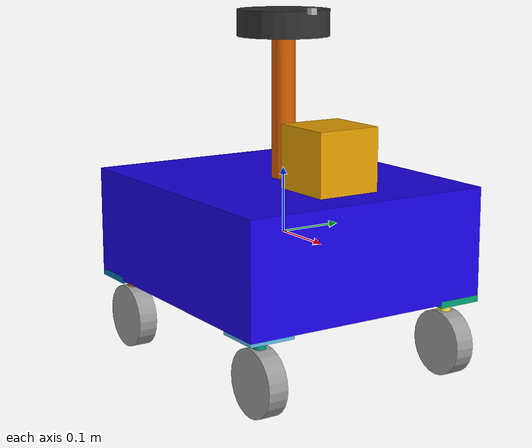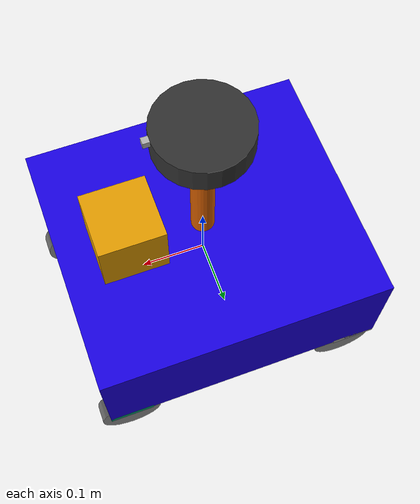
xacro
<?xml version="1.0"?>
<robot name="macroed" xmlns:xacro="http://ros.org/wiki/xacro">

<xacro:property name="length" value='0.45' />
<xacro:property name="width"  value='0.4' />
<xacro:property name='height' value='0.17' />
<xacro:property name="wheel_radius" value='0.05' />
<xacro:property name="wheel_width" value='0.03' />
<xacro:property name="sheet_length" value='0.07' />
<xacro:property name="sheet_width" value='0.07' />
<xacro:property name="sheet_height" value='0.01' />
<xacro:property name="c_radius" value='0.01'/>
<xacro:property name="c_height" value='0.05'/>
<xacro:property name="cylin_radius" value='0.07' />
<xacro:property name="cylin_height" value='0.04' />
<xacro:property name="rod_radius" value='0.018' />
<xacro:property name="rod_length" value='0.3'/>
<xacro:property name="camera_dim" value="0.01"/>
<xacro:property name="pi" value="3.1428"/>
<xacro:property name="laz_radius" value="0.04"/>
<xacro:property name="laz_height" value="0.1"/>

<material name="blue">
    <color rgba="0.1 0.0 0.9 1"/>
</material>
<material name="grey">
    <color rgba="0.191 0.191 0.191 1"/>
</material>

<xacro:macro name="default_inertial" params="mass">
    <inertial>
      <mass value="${mass}" />
      <inertia ixx="1.0" ixy="0.0" ixz="0.0" iyy="1.0" iyz="0.0" izz="1.0" />
    </inertial>
  </xacro:macro>

<link name="base_link">
    <visual>
        <geometry>
           <box size="${length} ${width} ${height}"/>
        </geometry>
        <material name='blue'/>
    </visual>
    <collision>
        <geometry>
            <box size= "${length} ${width} ${height}"/>
        </geometry>
    </collision>
    <inertial>
        <mass value="5"/>
       <inertia ixx="0.07871" ixy="0" ixz="0" iyy="0.09642" iyz="0.0" izz="0.1510"/>
    </inertial>
</link>

<xacro:macro name="sheets" params="prefix suffix reflectx reflecty">
    <link name="${prefix}_${suffix}_sheet">
        <visual>
            <geometry>
                <box size="${sheet_length} ${sheet_width} ${sheet_height}"/>
            </geometry>
        </visual>
        <collision>
            <geometry>
                <box size="${sheet_length} ${sheet_width} ${sheet_height}"/>
            </geometry>
        </collision>
        <inertial>
            <mass value="0.01"/>
            <inertia ixx="0.000004167" ixy="0.0" ixz="0.0" iyy="0.000004167" iyz="0.0" izz="0.000008167"/>
        </inertial>

    </link>
    <joint name="${prefix}_${suffix}_sheet_joint" type="fixed">
        <parent link="base_link"/>
        <child link="${prefix}_${suffix}_sheet"/>
        <origin xyz="${(length-sheet_length)*0.5*reflectx} ${(width-sheet_width)*0.5*reflecty} -0.085" rpy="0.0 0.0 0.0"/>
    </joint>

    <link name="${prefix}_${suffix}_scylinder">
        <visual>
            <geometry>
                <cylinder radius="${c_radius}" length="${c_height}"/>
            </geometry>
        </visual>
        <collision>
                <geometry>
                    <cylinder radius="${c_radius}" length="${c_height}"/>
                </geometry>
        </collision>
        <inertial>
            <mass value="0.01"/>
           <inertia ixx="0.0000023333" ixy="0.0" ixz="0.0" iyy="0.0000023333" iyz="0.0" izz="0.0000005"/>
        </inertial>
    </link>
    <joint name="${prefix}_${suffix}_sheet_cylinder" type="fixed">
        <parent link="${prefix}_${suffix}_sheet"/>
        <child link="${prefix}_${suffix}_scylinder"/>
    </joint>

    <link name="${prefix}_${suffix}_wheel">
        <visual>
            <geometry>
                <cylinder radius="${wheel_radius}" length="${wheel_width}"/>
            </geometry>
        </visual>
        <collision>
                <geometry>
                    <cylinder radius="${wheel_radius}" length="${wheel_width}"/>
                </geometry>
        </collision>
        <inertial>
            <mass value="1"/>
           <inertia ixx="0.0007" ixy="0.0" ixz="0.0" iyy="0.0007" iyz="0.0" izz="0.00125"/>
        </inertial>
    </link>
    <joint name="${prefix}_${suffix}_scylinder_wheel" type="continuous">
        <axis xyz="0 0.0 1.0"/>
        <parent link="${prefix}_${suffix}_scylinder"/>
        <child link="${prefix}_${suffix}_wheel"/>
        <origin xyz="0.0 0.0 -0.07" rpy="-1.57 0.0 0.0"/>
    </joint>
    <gazebo reference="${prefix}_${suffix}_wheel">
      <mu1 value="200.0"/>
      <mu2 value="100.0"/>
      <kp value="10000000.0" />
      <kd value="1.0" />
      <material>Gazebo/Grey</material>
    </gazebo>
    <transmission name="${prefix}_${suffix}_wheel_trans">
      <type>transmission_interface/SimpleTransmission</type>
      <actuator name="${prefix}_${suffix}_wheel_motor">
        <mechanicalReduction>1</mechanicalReduction>
      </actuator>
      <joint name="${prefix}_${suffix}_scylinder_wheel">
        <hardwareInterface>hardware_interface/VelocityJointInterface</hardwareInterface>
      </joint>
    </transmission>
</xacro:macro>
<xacro:sheets prefix="left" suffix="front" reflectx="1" reflecty="-1" />
<xacro:sheets prefix="left" suffix="back" reflectx="-1" reflecty="-1"/>
 <xacro:sheets prefix="right" suffix="back" reflectx="-1" reflecty="1" />
<xacro:sheets prefix="right" suffix="front" reflectx="1" reflecty="1" />

<link name="rod">
<visual>
<geometry>
    <cylinder radius="${rod_radius}" length="${rod_length}"/>
</geometry>
<origin xyz="0.0 0.0 0.17"/>
</visual>
<collision>
    <geometry>
    <cylinder radius="${rod_radius}" length="${rod_length}"/>
    </geometry>
</collision>
<inertial>
    <mass value="1.75"/>
   <inertia ixx="0.007581" ixy="0.0" ixz="0.0" iyy="0.007581" iyz="0.0" izz="0.000162"/>
</inertial>
</link>

<joint name="base_to_rod" type="fixed">
    <parent link="base_link"/>
    <child link="rod"/>
</joint>

<link name="cylin">
    <visual>
        <geometry>
            <cylinder radius="${cylin_radius}" length="${cylin_height}"/>
        </geometry>
        <material name='grey'/>
    </visual>
    <collision>
        <geometry>
            <cylinder radius="${cylin_radius}" length="${cylin_height}"/>
        </geometry>
    </collision>
  <inertial>
      <mass value="0.65"/>
     <inertia ixx="0.000883" ixy="0.0" ixz="0.0" iyy="0.000883" iyz="0.0" izz="0.0015925"/>
  </inertial>
</link>
<joint name="rod_cylin" type="continuous">
    <axis xyz="0.0 0.0 1"/>
    <parent link="rod"/>
    <child link="cylin"/>
    <origin xyz="0.0 0.0 0.32"/>
</joint>

<transmission name="cylin_trans">
    <type>transmission_interface/SimpleTransmission</type>
    <actuator name="motor1">
      <mechanicalReduction>1</mechanicalReduction>
    </actuator>
    <joint name="rod_cylin">
      <hardwareInterface>hardware_interface/PositionJointInterface</hardwareInterface>
    </joint>
</transmission>

<link name="camera_link">
    <visual>
        <geometry>
            <box size="${camera_dim} ${camera_dim} ${camera_dim}"/>
        </geometry>
    </visual>
    <collision>
        <geometry>
            <box size="${camera_dim} ${camera_dim} ${camera_dim}"/>
        </geometry>
    </collision>
    <inertial>
        <mass value="0.2"/>
       <inertia ixx="0.0000033333" ixy="0.0" ixz="0.0" iyy="0.0000033333" iyz="0.0" izz="0.0000033333"/>
    </inertial>
</link>
<joint name="camera_joint" type="fixed">
    <axis xyz="1.0 0.0 0.0"/>
    <parent link="cylin"/>
    <child link="camera_link"/>
    <origin xyz="0.075 0.0 0.02"/>
</joint>
<gazebo>
    <plugin name="gazebo_ros_control" filename="libgazebo_ros_control.so">
      <robotNamespace>/</robotNamespace>
    </plugin>
</gazebo>
<gazebo reference="camera_link">
    <sensor type="camera" name="camera1">
      <update_rate>30.0</update_rate>
      <camera name="head">
        <horizontal_fov>1.3962634</horizontal_fov>
        <image>
          <width>800</width>
          <height>800</height>
          <format>R8G8B8</format>
        </image>
        <clip>
          <near>0.02</near>
          <far>300</far>
        </clip>
        <noise>
          <type>gaussian</type>
          <mean>0.0</mean>
          <stddev>0.007</stddev>
        </noise>
      </camera>
      <plugin name="camera_controller" filename="libgazebo_ros_camera.so">
        <alwaysOn>true</alwaysOn>
        <updateRate>0.0</updateRate>
        <cameraName>macroed/camera1</cameraName>
        <imageTopicName>image_raw</imageTopicName>
        <cameraInfoTopicName>camera_info</cameraInfoTopicName>
        <frameName>camera_link</frameName>
        <hackBaseline>0.07</hackBaseline>
        <distortionK1>0.0</distortionK1>
        <distortionK2>0.0</distortionK2>
        <distortionK3>0.0</distortionK3>
        <distortionT1>0.0</distortionT1>
        <distortionT2>0.0</distortionT2>
      </plugin>
    </sensor>
  </gazebo>

  <joint name="hokuyo_joint" type="fixed">
    <axis xyz="0 0 1" />
    <origin xyz="0.12 0 0.13" rpy="0 0 0"/>
    <parent link="base_link"/>
    <child link="hokuyo_link"/>
  </joint>

  <!-- Hokuyo Laser -->
  <link name="hokuyo_link">
    <collision>
      <origin xyz="0 0 0" rpy="0 0 0"/>
      <geometry>
    <box size="0.1 0.1 0.1"/>
      </geometry>
    </collision>

    <visual>
      <origin xyz="0 0 0" rpy="0 0 0"/>
      <geometry>
        <box size="0.1 0.1 0.1"/>
      </geometry>
    </visual>

    <inertial>
      <mass value="1e-5" />
      <origin xyz="0 0 0" rpy="0 0 0"/>
      <inertia ixx="1e-6" ixy="0" ixz="0" iyy="1e-6" iyz="0" izz="1e-6" />
    </inertial>
  </link>
  <gazebo reference="hokuyo_link">
    <sensor type="gpu_ray" name="head_hokuyo_sensor">
      <pose>0 0 0 0 0 0</pose>
      <visualize>true</visualize>
      <update_rate>40</update_rate>
      <ray>
        <scan>
          <horizontal>
            <samples>720</samples>
            <resolution>1</resolution>
            <min_angle>-1.570796</min_angle>
            <max_angle>1.570796</max_angle>
          </horizontal>
        </scan>
        <range>
          <min>0.10</min>
          <max>10.0</max>
          <resolution>0.01</resolution>
        </range>
      </ray>
      <plugin name="gazebo_ros_head_hokuyo_controller" filename="libgazebo_ros_gpu_laser.so">
        <topicName>/macroed/laser/scan</topicName>
        <frameName>hokuyo_link</frameName>
      </plugin>
    </sensor>
  </gazebo>
</robot>
